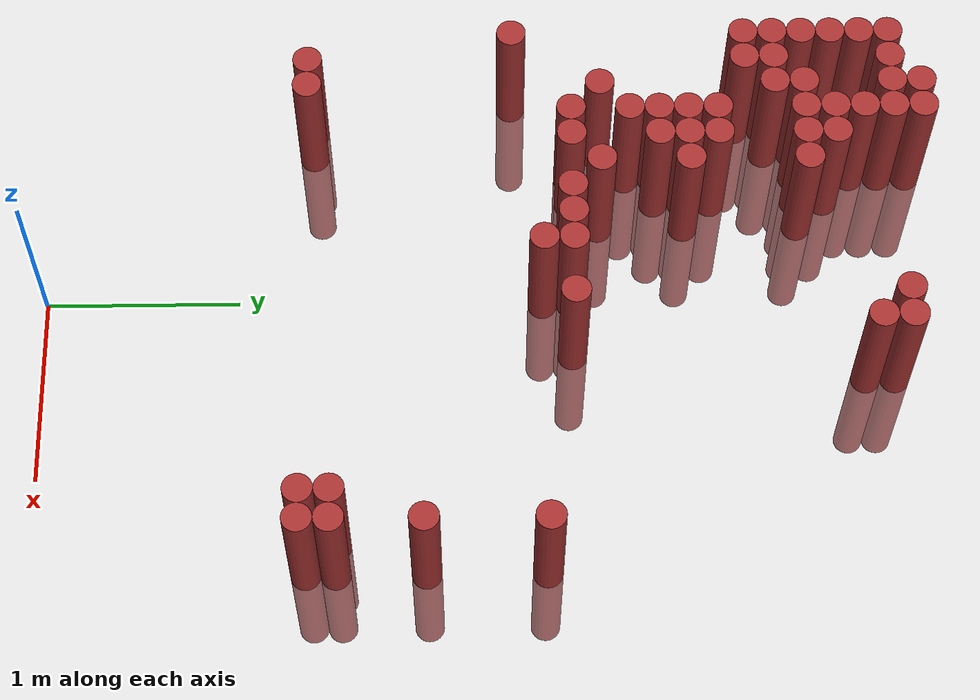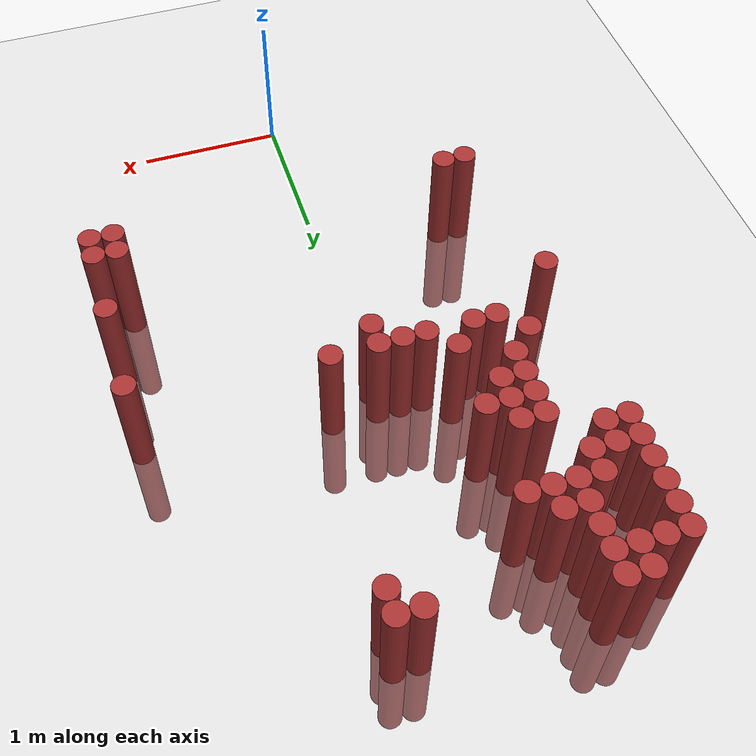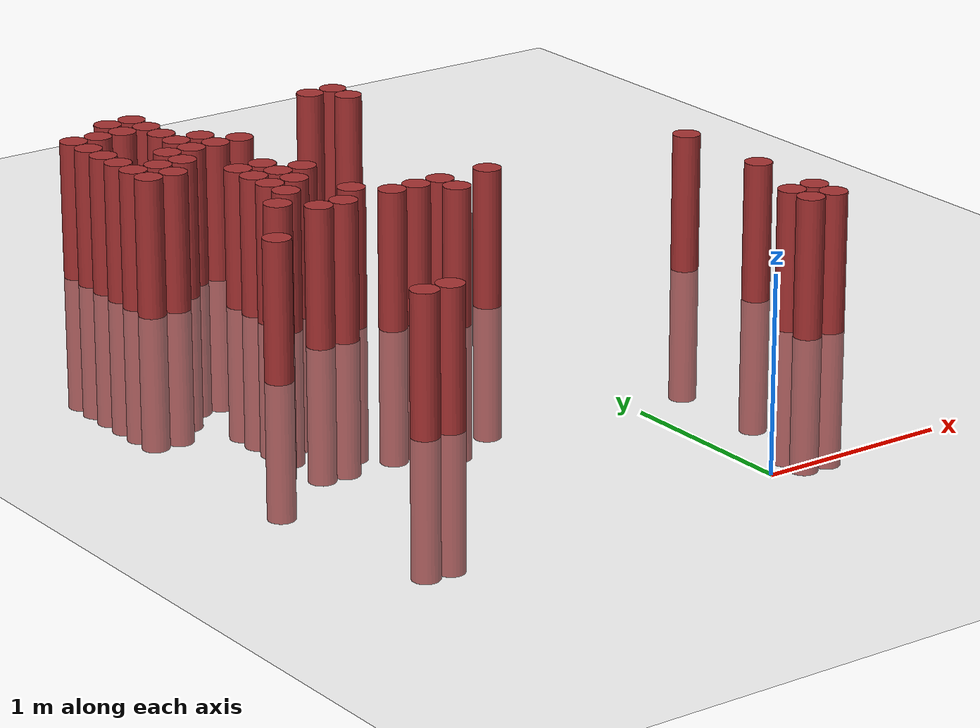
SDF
<sdf version="1.6">
 <world name="default">
  <model name="ground_plane">
   <static>1</static>
   <link name="link">
    <collision name="collision">
     <geometry><plane><normal>0 0 1</normal><size>100 100</size></plane></geometry>
     <surface><friction><ode><mu>100</mu><mu2>50</mu2></ode></friction></surface>
    </collision>
    <visual name="visual">
     <cast_shadows>0</cast_shadows>
     <geometry><plane><normal>0 0 1</normal><size>100 100</size></plane></geometry>
     <material>
      <script><uri>file://media/materials/scripts/gazebo.material</uri><name>Gazebo/Grey</name></script>
     </material>
    </visual>
   </link>
  </model>
  <model name="unit_cylinder_160">
   <static>1</static>
   <pose>-1.175000 2.425000 0.000000 0.000000 0.000000 0.000000</pose>
   <link name="link">
    <inertial>
     <mass>1</mass>
     <inertia><ixx>0.145833</ixx><ixy>0</ixy><ixz>0</ixz><iyy>0.145833</iyy><iyz>0</iyz><izz>0.125</izz></inertia>
    </inertial>
    <collision name="collision">
     <geometry><cylinder><radius>0.075000</radius><length>1.5</length></cylinder></geometry>
    </collision>
    <visual name="visual">
     <geometry><cylinder><radius>0.075000</radius><length>1.5</length></cylinder></geometry>
     <material>
      <ambient>0.648000 0.192000 0.192000 1</ambient>
      <diffuse>0.648000 0.192000 0.192000 1</diffuse>
     </material>
     <material>
      <script><name>Gazebo/Grey</name><uri>file://media/materials/scripts/gazebo.material</uri></script>
     </material>
    </visual>
   </link>
  </model>
  <model name="unit_cylinder_161">
   <static>1</static>
   <pose>-1.175000 3.625000 0.000000 0.000000 0.000000 0.000000</pose>
   <link name="link">
    <inertial>
     <mass>1</mass>
     <inertia><ixx>0.145833</ixx><ixy>0</ixy><ixz>0</ixz><iyy>0.145833</iyy><iyz>0</iyz><izz>0.125</izz></inertia>
    </inertial>
    <collision name="collision">
     <geometry><cylinder><radius>0.075000</radius><length>1.5</length></cylinder></geometry>
    </collision>
    <visual name="visual">
     <geometry><cylinder><radius>0.075000</radius><length>1.5</length></cylinder></geometry>
     <material>
      <ambient>0.648000 0.192000 0.192000 1</ambient>
      <diffuse>0.648000 0.192000 0.192000 1</diffuse>
     </material>
     <material>
      <script><name>Gazebo/Grey</name><uri>file://media/materials/scripts/gazebo.material</uri></script>
     </material>
    </visual>
   </link>
  </model>
  <model name="unit_cylinder_162">
   <static>1</static>
   <pose>-1.175000 3.775000 0.000000 0.000000 0.000000 0.000000</pose>
   <link name="link">
    <inertial>
     <mass>1</mass>
     <inertia><ixx>0.145833</ixx><ixy>0</ixy><ixz>0</ixz><iyy>0.145833</iyy><iyz>0</iyz><izz>0.125</izz></inertia>
    </inertial>
    <collision name="collision">
     <geometry><cylinder><radius>0.075000</radius><length>1.5</length></cylinder></geometry>
    </collision>
    <visual name="visual">
     <geometry><cylinder><radius>0.075000</radius><length>1.5</length></cylinder></geometry>
     <material>
      <ambient>0.648000 0.192000 0.192000 1</ambient>
      <diffuse>0.648000 0.192000 0.192000 1</diffuse>
     </material>
     <material>
      <script><name>Gazebo/Grey</name><uri>file://media/materials/scripts/gazebo.material</uri></script>
     </material>
    </visual>
   </link>
  </model>
  <model name="unit_cylinder_163">
   <static>1</static>
   <pose>-1.175000 3.925000 0.000000 0.000000 0.000000 0.000000</pose>
   <link name="link">
    <inertial>
     <mass>1</mass>
     <inertia><ixx>0.145833</ixx><ixy>0</ixy><ixz>0</ixz><iyy>0.145833</iyy><iyz>0</iyz><izz>0.125</izz></inertia>
    </inertial>
    <collision name="collision">
     <geometry><cylinder><radius>0.075000</radius><length>1.5</length></cylinder></geometry>
    </collision>
    <visual name="visual">
     <geometry><cylinder><radius>0.075000</radius><length>1.5</length></cylinder></geometry>
     <material>
      <ambient>0.648000 0.192000 0.192000 1</ambient>
      <diffuse>0.648000 0.192000 0.192000 1</diffuse>
     </material>
     <material>
      <script><name>Gazebo/Grey</name><uri>file://media/materials/scripts/gazebo.material</uri></script>
     </material>
    </visual>
   </link>
  </model>
  <model name="unit_cylinder_164">
   <static>1</static>
   <pose>-1.175000 4.075000 0.000000 0.000000 0.000000 0.000000</pose>
   <link name="link">
    <inertial>
     <mass>1</mass>
     <inertia><ixx>0.145833</ixx><ixy>0</ixy><ixz>0</ixz><iyy>0.145833</iyy><iyz>0</iyz><izz>0.125</izz></inertia>
    </inertial>
    <collision name="collision">
     <geometry><cylinder><radius>0.075000</radius><length>1.5</length></cylinder></geometry>
    </collision>
    <visual name="visual">
     <geometry><cylinder><radius>0.075000</radius><length>1.5</length></cylinder></geometry>
     <material>
      <ambient>0.648000 0.192000 0.192000 1</ambient>
      <diffuse>0.648000 0.192000 0.192000 1</diffuse>
     </material>
     <material>
      <script><name>Gazebo/Grey</name><uri>file://media/materials/scripts/gazebo.material</uri></script>
     </material>
    </visual>
   </link>
  </model>
  <model name="unit_cylinder_165">
   <static>1</static>
   <pose>-1.175000 4.225000 0.000000 0.000000 0.000000 0.000000</pose>
   <link name="link">
    <inertial>
     <mass>1</mass>
     <inertia><ixx>0.145833</ixx><ixy>0</ixy><ixz>0</ixz><iyy>0.145833</iyy><iyz>0</iyz><izz>0.125</izz></inertia>
    </inertial>
    <collision name="collision">
     <geometry><cylinder><radius>0.075000</radius><length>1.5</length></cylinder></geometry>
    </collision>
    <visual name="visual">
     <geometry><cylinder><radius>0.075000</radius><length>1.5</length></cylinder></geometry>
     <material>
      <ambient>0.648000 0.192000 0.192000 1</ambient>
      <diffuse>0.648000 0.192000 0.192000 1</diffuse>
     </material>
     <material>
      <script><name>Gazebo/Grey</name><uri>file://media/materials/scripts/gazebo.material</uri></script>
     </material>
    </visual>
   </link>
  </model>
  <model name="unit_cylinder_166">
   <static>1</static>
   <pose>-1.175000 4.375000 0.000000 0.000000 0.000000 0.000000</pose>
   <link name="link">
    <inertial>
     <mass>1</mass>
     <inertia><ixx>0.145833</ixx><ixy>0</ixy><ixz>0</ixz><iyy>0.145833</iyy><iyz>0</iyz><izz>0.125</izz></inertia>
    </inertial>
    <collision name="collision">
     <geometry><cylinder><radius>0.075000</radius><length>1.5</length></cylinder></geometry>
    </collision>
    <visual name="visual">
     <geometry><cylinder><radius>0.075000</radius><length>1.5</length></cylinder></geometry>
     <material>
      <ambient>0.648000 0.192000 0.192000 1</ambient>
      <diffuse>0.648000 0.192000 0.192000 1</diffuse>
     </material>
     <material>
      <script><name>Gazebo/Grey</name><uri>file://media/materials/scripts/gazebo.material</uri></script>
     </material>
    </visual>
   </link>
  </model>
  <model name="unit_cylinder_168">
   <static>1</static>
   <pose>-1.025000 1.375000 0.000000 0.000000 0.000000 0.000000</pose>
   <link name="link">
    <inertial>
     <mass>1</mass>
     <inertia><ixx>0.145833</ixx><ixy>0</ixy><ixz>0</ixz><iyy>0.145833</iyy><iyz>0</iyz><izz>0.125</izz></inertia>
    </inertial>
    <collision name="collision">
     <geometry><cylinder><radius>0.075000</radius><length>1.5</length></cylinder></geometry>
    </collision>
    <visual name="visual">
     <geometry><cylinder><radius>0.075000</radius><length>1.5</length></cylinder></geometry>
     <material>
      <ambient>0.648000 0.192000 0.192000 1</ambient>
      <diffuse>0.648000 0.192000 0.192000 1</diffuse>
     </material>
     <material>
      <script><name>Gazebo/Grey</name><uri>file://media/materials/scripts/gazebo.material</uri></script>
     </material>
    </visual>
   </link>
  </model>
  <model name="unit_cylinder_169">
   <static>1</static>
   <pose>-1.025000 3.625000 0.000000 0.000000 0.000000 0.000000</pose>
   <link name="link">
    <inertial>
     <mass>1</mass>
     <inertia><ixx>0.145833</ixx><ixy>0</ixy><ixz>0</ixz><iyy>0.145833</iyy><iyz>0</iyz><izz>0.125</izz></inertia>
    </inertial>
    <collision name="collision">
     <geometry><cylinder><radius>0.075000</radius><length>1.5</length></cylinder></geometry>
    </collision>
    <visual name="visual">
     <geometry><cylinder><radius>0.075000</radius><length>1.5</length></cylinder></geometry>
     <material>
      <ambient>0.648000 0.192000 0.192000 1</ambient>
      <diffuse>0.648000 0.192000 0.192000 1</diffuse>
     </material>
     <material>
      <script><name>Gazebo/Grey</name><uri>file://media/materials/scripts/gazebo.material</uri></script>
     </material>
    </visual>
   </link>
  </model>
  <model name="unit_cylinder_170">
   <static>1</static>
   <pose>-1.025000 3.775000 0.000000 0.000000 0.000000 0.000000</pose>
   <link name="link">
    <inertial>
     <mass>1</mass>
     <inertia><ixx>0.145833</ixx><ixy>0</ixy><ixz>0</ixz><iyy>0.145833</iyy><iyz>0</iyz><izz>0.125</izz></inertia>
    </inertial>
    <collision name="collision">
     <geometry><cylinder><radius>0.075000</radius><length>1.5</length></cylinder></geometry>
    </collision>
    <visual name="visual">
     <geometry><cylinder><radius>0.075000</radius><length>1.5</length></cylinder></geometry>
     <material>
      <ambient>0.648000 0.192000 0.192000 1</ambient>
      <diffuse>0.648000 0.192000 0.192000 1</diffuse>
     </material>
     <material>
      <script><name>Gazebo/Grey</name><uri>file://media/materials/scripts/gazebo.material</uri></script>
     </material>
    </visual>
   </link>
  </model>
  <model name="unit_cylinder_171">
   <static>1</static>
   <pose>-1.025000 4.375000 0.000000 0.000000 0.000000 0.000000</pose>
   <link name="link">
    <inertial>
     <mass>1</mass>
     <inertia><ixx>0.145833</ixx><ixy>0</ixy><ixz>0</ixz><iyy>0.145833</iyy><iyz>0</iyz><izz>0.125</izz></inertia>
    </inertial>
    <collision name="collision">
     <geometry><cylinder><radius>0.075000</radius><length>1.5</length></cylinder></geometry>
    </collision>
    <visual name="visual">
     <geometry><cylinder><radius>0.075000</radius><length>1.5</length></cylinder></geometry>
     <material>
      <ambient>0.648000 0.192000 0.192000 1</ambient>
      <diffuse>0.648000 0.192000 0.192000 1</diffuse>
     </material>
     <material>
      <script><name>Gazebo/Grey</name><uri>file://media/materials/scripts/gazebo.material</uri></script>
     </material>
    </visual>
   </link>
  </model>
  <model name="unit_cylinder_175">
   <static>1</static>
   <pose>-0.875000 1.375000 0.000000 0.000000 0.000000 0.000000</pose>
   <link name="link">
    <inertial>
     <mass>1</mass>
     <inertia><ixx>0.145833</ixx><ixy>0</ixy><ixz>0</ixz><iyy>0.145833</iyy><iyz>0</iyz><izz>0.125</izz></inertia>
    </inertial>
    <collision name="collision">
     <geometry><cylinder><radius>0.075000</radius><length>1.5</length></cylinder></geometry>
    </collision>
    <visual name="visual">
     <geometry><cylinder><radius>0.075000</radius><length>1.5</length></cylinder></geometry>
     <material>
      <ambient>0.648000 0.192000 0.192000 1</ambient>
      <diffuse>0.648000 0.192000 0.192000 1</diffuse>
     </material>
     <material>
      <script><name>Gazebo/Grey</name><uri>file://media/materials/scripts/gazebo.material</uri></script>
     </material>
    </visual>
   </link>
  </model>
  <model name="unit_cylinder_176">
   <static>1</static>
   <pose>-0.875000 2.875000 0.000000 0.000000 0.000000 0.000000</pose>
   <link name="link">
    <inertial>
     <mass>1</mass>
     <inertia><ixx>0.145833</ixx><ixy>0</ixy><ixz>0</ixz><iyy>0.145833</iyy><iyz>0</iyz><izz>0.125</izz></inertia>
    </inertial>
    <collision name="collision">
     <geometry><cylinder><radius>0.075000</radius><length>1.5</length></cylinder></geometry>
    </collision>
    <visual name="visual">
     <geometry><cylinder><radius>0.075000</radius><length>1.5</length></cylinder></geometry>
     <material>
      <ambient>0.648000 0.192000 0.192000 1</ambient>
      <diffuse>0.648000 0.192000 0.192000 1</diffuse>
     </material>
     <material>
      <script><name>Gazebo/Grey</name><uri>file://media/materials/scripts/gazebo.material</uri></script>
     </material>
    </visual>
   </link>
  </model>
  <model name="unit_cylinder_177">
   <static>1</static>
   <pose>-0.875000 3.775000 0.000000 0.000000 0.000000 0.000000</pose>
   <link name="link">
    <inertial>
     <mass>1</mass>
     <inertia><ixx>0.145833</ixx><ixy>0</ixy><ixz>0</ixz><iyy>0.145833</iyy><iyz>0</iyz><izz>0.125</izz></inertia>
    </inertial>
    <collision name="collision">
     <geometry><cylinder><radius>0.075000</radius><length>1.5</length></cylinder></geometry>
    </collision>
    <visual name="visual">
     <geometry><cylinder><radius>0.075000</radius><length>1.5</length></cylinder></geometry>
     <material>
      <ambient>0.648000 0.192000 0.192000 1</ambient>
      <diffuse>0.648000 0.192000 0.192000 1</diffuse>
     </material>
     <material>
      <script><name>Gazebo/Grey</name><uri>file://media/materials/scripts/gazebo.material</uri></script>
     </material>
    </visual>
   </link>
  </model>
  <model name="unit_cylinder_178">
   <static>1</static>
   <pose>-0.875000 3.925000 0.000000 0.000000 0.000000 0.000000</pose>
   <link name="link">
    <inertial>
     <mass>1</mass>
     <inertia><ixx>0.145833</ixx><ixy>0</ixy><ixz>0</ixz><iyy>0.145833</iyy><iyz>0</iyz><izz>0.125</izz></inertia>
    </inertial>
    <collision name="collision">
     <geometry><cylinder><radius>0.075000</radius><length>1.5</length></cylinder></geometry>
    </collision>
    <visual name="visual">
     <geometry><cylinder><radius>0.075000</radius><length>1.5</length></cylinder></geometry>
     <material>
      <ambient>0.648000 0.192000 0.192000 1</ambient>
      <diffuse>0.648000 0.192000 0.192000 1</diffuse>
     </material>
     <material>
      <script><name>Gazebo/Grey</name><uri>file://media/materials/scripts/gazebo.material</uri></script>
     </material>
    </visual>
   </link>
  </model>
  <model name="unit_cylinder_179">
   <static>1</static>
   <pose>-0.875000 4.375000 0.000000 0.000000 0.000000 0.000000</pose>
   <link name="link">
    <inertial>
     <mass>1</mass>
     <inertia><ixx>0.145833</ixx><ixy>0</ixy><ixz>0</ixz><iyy>0.145833</iyy><iyz>0</iyz><izz>0.125</izz></inertia>
    </inertial>
    <collision name="collision">
     <geometry><cylinder><radius>0.075000</radius><length>1.5</length></cylinder></geometry>
    </collision>
    <visual name="visual">
     <geometry><cylinder><radius>0.075000</radius><length>1.5</length></cylinder></geometry>
     <material>
      <ambient>0.648000 0.192000 0.192000 1</ambient>
      <diffuse>0.648000 0.192000 0.192000 1</diffuse>
     </material>
     <material>
      <script><name>Gazebo/Grey</name><uri>file://media/materials/scripts/gazebo.material</uri></script>
     </material>
    </visual>
   </link>
  </model>
  <model name="unit_cylinder_180">
   <static>1</static>
   <pose>-0.875000 4.525000 0.000000 0.000000 0.000000 0.000000</pose>
   <link name="link">
    <inertial>
     <mass>1</mass>
     <inertia><ixx>0.145833</ixx><ixy>0</ixy><ixz>0</ixz><iyy>0.145833</iyy><iyz>0</iyz><izz>0.125</izz></inertia>
    </inertial>
    <collision name="collision">
     <geometry><cylinder><radius>0.075000</radius><length>1.5</length></cylinder></geometry>
    </collision>
    <visual name="visual">
     <geometry><cylinder><radius>0.075000</radius><length>1.5</length></cylinder></geometry>
     <material>
      <ambient>0.648000 0.192000 0.192000 1</ambient>
      <diffuse>0.648000 0.192000 0.192000 1</diffuse>
     </material>
     <material>
      <script><name>Gazebo/Grey</name><uri>file://media/materials/scripts/gazebo.material</uri></script>
     </material>
    </visual>
   </link>
  </model>
  <model name="unit_cylinder_181">
   <static>1</static>
   <pose>-0.725000 2.725000 0.000000 0.000000 0.000000 0.000000</pose>
   <link name="link">
    <inertial>
     <mass>1</mass>
     <inertia><ixx>0.145833</ixx><ixy>0</ixy><ixz>0</ixz><iyy>0.145833</iyy><iyz>0</iyz><izz>0.125</izz></inertia>
    </inertial>
    <collision name="collision">
     <geometry><cylinder><radius>0.075000</radius><length>1.5</length></cylinder></geometry>
    </collision>
    <visual name="visual">
     <geometry><cylinder><radius>0.075000</radius><length>1.5</length></cylinder></geometry>
     <material>
      <ambient>0.648000 0.192000 0.192000 1</ambient>
      <diffuse>0.648000 0.192000 0.192000 1</diffuse>
     </material>
     <material>
      <script><name>Gazebo/Grey</name><uri>file://media/materials/scripts/gazebo.material</uri></script>
     </material>
    </visual>
   </link>
  </model>
  <model name="unit_cylinder_182">
   <static>1</static>
   <pose>-0.725000 3.025000 0.000000 0.000000 0.000000 0.000000</pose>
   <link name="link">
    <inertial>
     <mass>1</mass>
     <inertia><ixx>0.145833</ixx><ixy>0</ixy><ixz>0</ixz><iyy>0.145833</iyy><iyz>0</iyz><izz>0.125</izz></inertia>
    </inertial>
    <collision name="collision">
     <geometry><cylinder><radius>0.075000</radius><length>1.5</length></cylinder></geometry>
    </collision>
    <visual name="visual">
     <geometry><cylinder><radius>0.075000</radius><length>1.5</length></cylinder></geometry>
     <material>
      <ambient>0.648000 0.192000 0.192000 1</ambient>
      <diffuse>0.648000 0.192000 0.192000 1</diffuse>
     </material>
     <material>
      <script><name>Gazebo/Grey</name><uri>file://media/materials/scripts/gazebo.material</uri></script>
     </material>
    </visual>
   </link>
  </model>
  <model name="unit_cylinder_183">
   <static>1</static>
   <pose>-0.725000 3.175000 0.000000 0.000000 0.000000 0.000000</pose>
   <link name="link">
    <inertial>
     <mass>1</mass>
     <inertia><ixx>0.145833</ixx><ixy>0</ixy><ixz>0</ixz><iyy>0.145833</iyy><iyz>0</iyz><izz>0.125</izz></inertia>
    </inertial>
    <collision name="collision">
     <geometry><cylinder><radius>0.075000</radius><length>1.5</length></cylinder></geometry>
    </collision>
    <visual name="visual">
     <geometry><cylinder><radius>0.075000</radius><length>1.5</length></cylinder></geometry>
     <material>
      <ambient>0.648000 0.192000 0.192000 1</ambient>
      <diffuse>0.648000 0.192000 0.192000 1</diffuse>
     </material>
     <material>
      <script><name>Gazebo/Grey</name><uri>file://media/materials/scripts/gazebo.material</uri></script>
     </material>
    </visual>
   </link>
  </model>
  <model name="unit_cylinder_184">
   <static>1</static>
   <pose>-0.725000 3.325000 0.000000 0.000000 0.000000 0.000000</pose>
   <link name="link">
    <inertial>
     <mass>1</mass>
     <inertia><ixx>0.145833</ixx><ixy>0</ixy><ixz>0</ixz><iyy>0.145833</iyy><iyz>0</iyz><izz>0.125</izz></inertia>
    </inertial>
    <collision name="collision">
     <geometry><cylinder><radius>0.075000</radius><length>1.5</length></cylinder></geometry>
    </collision>
    <visual name="visual">
     <geometry><cylinder><radius>0.075000</radius><length>1.5</length></cylinder></geometry>
     <material>
      <ambient>0.648000 0.192000 0.192000 1</ambient>
      <diffuse>0.648000 0.192000 0.192000 1</diffuse>
     </material>
     <material>
      <script><name>Gazebo/Grey</name><uri>file://media/materials/scripts/gazebo.material</uri></script>
     </material>
    </visual>
   </link>
  </model>
  <model name="unit_cylinder_185">
   <static>1</static>
   <pose>-0.725000 3.475000 0.000000 0.000000 0.000000 0.000000</pose>
   <link name="link">
    <inertial>
     <mass>1</mass>
     <inertia><ixx>0.145833</ixx><ixy>0</ixy><ixz>0</ixz><iyy>0.145833</iyy><iyz>0</iyz><izz>0.125</izz></inertia>
    </inertial>
    <collision name="collision">
     <geometry><cylinder><radius>0.075000</radius><length>1.5</length></cylinder></geometry>
    </collision>
    <visual name="visual">
     <geometry><cylinder><radius>0.075000</radius><length>1.5</length></cylinder></geometry>
     <material>
      <ambient>0.648000 0.192000 0.192000 1</ambient>
      <diffuse>0.648000 0.192000 0.192000 1</diffuse>
     </material>
     <material>
      <script><name>Gazebo/Grey</name><uri>file://media/materials/scripts/gazebo.material</uri></script>
     </material>
    </visual>
   </link>
  </model>
  <model name="unit_cylinder_186">
   <static>1</static>
   <pose>-0.725000 3.925000 0.000000 0.000000 0.000000 0.000000</pose>
   <link name="link">
    <inertial>
     <mass>1</mass>
     <inertia><ixx>0.145833</ixx><ixy>0</ixy><ixz>0</ixz><iyy>0.145833</iyy><iyz>0</iyz><izz>0.125</izz></inertia>
    </inertial>
    <collision name="collision">
     <geometry><cylinder><radius>0.075000</radius><length>1.5</length></cylinder></geometry>
    </collision>
    <visual name="visual">
     <geometry><cylinder><radius>0.075000</radius><length>1.5</length></cylinder></geometry>
     <material>
      <ambient>0.648000 0.192000 0.192000 1</ambient>
      <diffuse>0.648000 0.192000 0.192000 1</diffuse>
     </material>
     <material>
      <script><name>Gazebo/Grey</name><uri>file://media/materials/scripts/gazebo.material</uri></script>
     </material>
    </visual>
   </link>
  </model>
  <model name="unit_cylinder_187">
   <static>1</static>
   <pose>-0.725000 4.075000 0.000000 0.000000 0.000000 0.000000</pose>
   <link name="link">
    <inertial>
     <mass>1</mass>
     <inertia><ixx>0.145833</ixx><ixy>0</ixy><ixz>0</ixz><iyy>0.145833</iyy><iyz>0</iyz><izz>0.125</izz></inertia>
    </inertial>
    <collision name="collision">
     <geometry><cylinder><radius>0.075000</radius><length>1.5</length></cylinder></geometry>
    </collision>
    <visual name="visual">
     <geometry><cylinder><radius>0.075000</radius><length>1.5</length></cylinder></geometry>
     <material>
      <ambient>0.648000 0.192000 0.192000 1</ambient>
      <diffuse>0.648000 0.192000 0.192000 1</diffuse>
     </material>
     <material>
      <script><name>Gazebo/Grey</name><uri>file://media/materials/scripts/gazebo.material</uri></script>
     </material>
    </visual>
   </link>
  </model>
  <model name="unit_cylinder_188">
   <static>1</static>
   <pose>-0.725000 4.225000 0.000000 0.000000 0.000000 0.000000</pose>
   <link name="link">
    <inertial>
     <mass>1</mass>
     <inertia><ixx>0.145833</ixx><ixy>0</ixy><ixz>0</ixz><iyy>0.145833</iyy><iyz>0</iyz><izz>0.125</izz></inertia>
    </inertial>
    <collision name="collision">
     <geometry><cylinder><radius>0.075000</radius><length>1.5</length></cylinder></geometry>
    </collision>
    <visual name="visual">
     <geometry><cylinder><radius>0.075000</radius><length>1.5</length></cylinder></geometry>
     <material>
      <ambient>0.648000 0.192000 0.192000 1</ambient>
      <diffuse>0.648000 0.192000 0.192000 1</diffuse>
     </material>
     <material>
      <script><name>Gazebo/Grey</name><uri>file://media/materials/scripts/gazebo.material</uri></script>
     </material>
    </visual>
   </link>
  </model>
  <model name="unit_cylinder_189">
   <static>1</static>
   <pose>-0.725000 4.375000 0.000000 0.000000 0.000000 0.000000</pose>
   <link name="link">
    <inertial>
     <mass>1</mass>
     <inertia><ixx>0.145833</ixx><ixy>0</ixy><ixz>0</ixz><iyy>0.145833</iyy><iyz>0</iyz><izz>0.125</izz></inertia>
    </inertial>
    <collision name="collision">
     <geometry><cylinder><radius>0.075000</radius><length>1.5</length></cylinder></geometry>
    </collision>
    <visual name="visual">
     <geometry><cylinder><radius>0.075000</radius><length>1.5</length></cylinder></geometry>
     <material>
      <ambient>0.648000 0.192000 0.192000 1</ambient>
      <diffuse>0.648000 0.192000 0.192000 1</diffuse>
     </material>
     <material>
      <script><name>Gazebo/Grey</name><uri>file://media/materials/scripts/gazebo.material</uri></script>
     </material>
    </visual>
   </link>
  </model>
  <model name="unit_cylinder_190">
   <static>1</static>
   <pose>-0.725000 4.525000 0.000000 0.000000 0.000000 0.000000</pose>
   <link name="link">
    <inertial>
     <mass>1</mass>
     <inertia><ixx>0.145833</ixx><ixy>0</ixy><ixz>0</ixz><iyy>0.145833</iyy><iyz>0</iyz><izz>0.125</izz></inertia>
    </inertial>
    <collision name="collision">
     <geometry><cylinder><radius>0.075000</radius><length>1.5</length></cylinder></geometry>
    </collision>
    <visual name="visual">
     <geometry><cylinder><radius>0.075000</radius><length>1.5</length></cylinder></geometry>
     <material>
      <ambient>0.648000 0.192000 0.192000 1</ambient>
      <diffuse>0.648000 0.192000 0.192000 1</diffuse>
     </material>
     <material>
      <script><name>Gazebo/Grey</name><uri>file://media/materials/scripts/gazebo.material</uri></script>
     </material>
    </visual>
   </link>
  </model>
  <model name="unit_cylinder_191">
   <static>1</static>
   <pose>-0.575000 2.725000 0.000000 0.000000 0.000000 0.000000</pose>
   <link name="link">
    <inertial>
     <mass>1</mass>
     <inertia><ixx>0.145833</ixx><ixy>0</ixy><ixz>0</ixz><iyy>0.145833</iyy><iyz>0</iyz><izz>0.125</izz></inertia>
    </inertial>
    <collision name="collision">
     <geometry><cylinder><radius>0.075000</radius><length>1.5</length></cylinder></geometry>
    </collision>
    <visual name="visual">
     <geometry><cylinder><radius>0.075000</radius><length>1.5</length></cylinder></geometry>
     <material>
      <ambient>0.648000 0.192000 0.192000 1</ambient>
      <diffuse>0.648000 0.192000 0.192000 1</diffuse>
     </material>
     <material>
      <script><name>Gazebo/Grey</name><uri>file://media/materials/scripts/gazebo.material</uri></script>
     </material>
    </visual>
   </link>
  </model>
  <model name="unit_cylinder_192">
   <static>1</static>
   <pose>-0.575000 3.175000 0.000000 0.000000 0.000000 0.000000</pose>
   <link name="link">
    <inertial>
     <mass>1</mass>
     <inertia><ixx>0.145833</ixx><ixy>0</ixy><ixz>0</ixz><iyy>0.145833</iyy><iyz>0</iyz><izz>0.125</izz></inertia>
    </inertial>
    <collision name="collision">
     <geometry><cylinder><radius>0.075000</radius><length>1.5</length></cylinder></geometry>
    </collision>
    <visual name="visual">
     <geometry><cylinder><radius>0.075000</radius><length>1.5</length></cylinder></geometry>
     <material>
      <ambient>0.648000 0.192000 0.192000 1</ambient>
      <diffuse>0.648000 0.192000 0.192000 1</diffuse>
     </material>
     <material>
      <script><name>Gazebo/Grey</name><uri>file://media/materials/scripts/gazebo.material</uri></script>
     </material>
    </visual>
   </link>
  </model>
  <model name="unit_cylinder_193">
   <static>1</static>
   <pose>-0.575000 3.325000 0.000000 0.000000 0.000000 0.000000</pose>
   <link name="link">
    <inertial>
     <mass>1</mass>
     <inertia><ixx>0.145833</ixx><ixy>0</ixy><ixz>0</ixz><iyy>0.145833</iyy><iyz>0</iyz><izz>0.125</izz></inertia>
    </inertial>
    <collision name="collision">
     <geometry><cylinder><radius>0.075000</radius><length>1.5</length></cylinder></geometry>
    </collision>
    <visual name="visual">
     <geometry><cylinder><radius>0.075000</radius><length>1.5</length></cylinder></geometry>
     <material>
      <ambient>0.648000 0.192000 0.192000 1</ambient>
      <diffuse>0.648000 0.192000 0.192000 1</diffuse>
     </material>
     <material>
      <script><name>Gazebo/Grey</name><uri>file://media/materials/scripts/gazebo.material</uri></script>
     </material>
    </visual>
   </link>
  </model>
  <model name="unit_cylinder_194">
   <static>1</static>
   <pose>-0.575000 3.475000 0.000000 0.000000 0.000000 0.000000</pose>
   <link name="link">
    <inertial>
     <mass>1</mass>
     <inertia><ixx>0.145833</ixx><ixy>0</ixy><ixz>0</ixz><iyy>0.145833</iyy><iyz>0</iyz><izz>0.125</izz></inertia>
    </inertial>
    <collision name="collision">
     <geometry><cylinder><radius>0.075000</radius><length>1.5</length></cylinder></geometry>
    </collision>
    <visual name="visual">
     <geometry><cylinder><radius>0.075000</radius><length>1.5</length></cylinder></geometry>
     <material>
      <ambient>0.648000 0.192000 0.192000 1</ambient>
      <diffuse>0.648000 0.192000 0.192000 1</diffuse>
     </material>
     <material>
      <script><name>Gazebo/Grey</name><uri>file://media/materials/scripts/gazebo.material</uri></script>
     </material>
    </visual>
   </link>
  </model>
  <model name="unit_cylinder_195">
   <static>1</static>
   <pose>-0.575000 3.925000 0.000000 0.000000 0.000000 0.000000</pose>
   <link name="link">
    <inertial>
     <mass>1</mass>
     <inertia><ixx>0.145833</ixx><ixy>0</ixy><ixz>0</ixz><iyy>0.145833</iyy><iyz>0</iyz><izz>0.125</izz></inertia>
    </inertial>
    <collision name="collision">
     <geometry><cylinder><radius>0.075000</radius><length>1.5</length></cylinder></geometry>
    </collision>
    <visual name="visual">
     <geometry><cylinder><radius>0.075000</radius><length>1.5</length></cylinder></geometry>
     <material>
      <ambient>0.648000 0.192000 0.192000 1</ambient>
      <diffuse>0.648000 0.192000 0.192000 1</diffuse>
     </material>
     <material>
      <script><name>Gazebo/Grey</name><uri>file://media/materials/scripts/gazebo.material</uri></script>
     </material>
    </visual>
   </link>
  </model>
  <model name="unit_cylinder_196">
   <static>1</static>
   <pose>-0.575000 4.075000 0.000000 0.000000 0.000000 0.000000</pose>
   <link name="link">
    <inertial>
     <mass>1</mass>
     <inertia><ixx>0.145833</ixx><ixy>0</ixy><ixz>0</ixz><iyy>0.145833</iyy><iyz>0</iyz><izz>0.125</izz></inertia>
    </inertial>
    <collision name="collision">
     <geometry><cylinder><radius>0.075000</radius><length>1.5</length></cylinder></geometry>
    </collision>
    <visual name="visual">
     <geometry><cylinder><radius>0.075000</radius><length>1.5</length></cylinder></geometry>
     <material>
      <ambient>0.648000 0.192000 0.192000 1</ambient>
      <diffuse>0.648000 0.192000 0.192000 1</diffuse>
     </material>
     <material>
      <script><name>Gazebo/Grey</name><uri>file://media/materials/scripts/gazebo.material</uri></script>
     </material>
    </visual>
   </link>
  </model>
  <model name="unit_cylinder_197">
   <static>1</static>
   <pose>-0.425000 2.875000 0.000000 0.000000 0.000000 0.000000</pose>
   <link name="link">
    <inertial>
     <mass>1</mass>
     <inertia><ixx>0.145833</ixx><ixy>0</ixy><ixz>0</ixz><iyy>0.145833</iyy><iyz>0</iyz><izz>0.125</izz></inertia>
    </inertial>
    <collision name="collision">
     <geometry><cylinder><radius>0.075000</radius><length>1.5</length></cylinder></geometry>
    </collision>
    <visual name="visual">
     <geometry><cylinder><radius>0.075000</radius><length>1.5</length></cylinder></geometry>
     <material>
      <ambient>0.648000 0.192000 0.192000 1</ambient>
      <diffuse>0.648000 0.192000 0.192000 1</diffuse>
     </material>
     <material>
      <script><name>Gazebo/Grey</name><uri>file://media/materials/scripts/gazebo.material</uri></script>
     </material>
    </visual>
   </link>
  </model>
  <model name="unit_cylinder_198">
   <static>1</static>
   <pose>-0.425000 3.325000 0.000000 0.000000 0.000000 0.000000</pose>
   <link name="link">
    <inertial>
     <mass>1</mass>
     <inertia><ixx>0.145833</ixx><ixy>0</ixy><ixz>0</ixz><iyy>0.145833</iyy><iyz>0</iyz><izz>0.125</izz></inertia>
    </inertial>
    <collision name="collision">
     <geometry><cylinder><radius>0.075000</radius><length>1.5</length></cylinder></geometry>
    </collision>
    <visual name="visual">
     <geometry><cylinder><radius>0.075000</radius><length>1.5</length></cylinder></geometry>
     <material>
      <ambient>0.648000 0.192000 0.192000 1</ambient>
      <diffuse>0.648000 0.192000 0.192000 1</diffuse>
     </material>
     <material>
      <script><name>Gazebo/Grey</name><uri>file://media/materials/scripts/gazebo.material</uri></script>
     </material>
    </visual>
   </link>
  </model>
  <model name="unit_cylinder_199">
   <static>1</static>
   <pose>-0.425000 3.925000 0.000000 0.000000 0.000000 0.000000</pose>
   <link name="link">
    <inertial>
     <mass>1</mass>
     <inertia><ixx>0.145833</ixx><ixy>0</ixy><ixz>0</ixz><iyy>0.145833</iyy><iyz>0</iyz><izz>0.125</izz></inertia>
    </inertial>
    <collision name="collision">
     <geometry><cylinder><radius>0.075000</radius><length>1.5</length></cylinder></geometry>
    </collision>
    <visual name="visual">
     <geometry><cylinder><radius>0.075000</radius><length>1.5</length></cylinder></geometry>
     <material>
      <ambient>0.648000 0.192000 0.192000 1</ambient>
      <diffuse>0.648000 0.192000 0.192000 1</diffuse>
     </material>
     <material>
      <script><name>Gazebo/Grey</name><uri>file://media/materials/scripts/gazebo.material</uri></script>
     </material>
    </visual>
   </link>
  </model>
  <model name="unit_cylinder_200">
   <static>1</static>
   <pose>-0.275000 2.725000 0.000000 0.000000 0.000000 0.000000</pose>
   <link name="link">
    <inertial>
     <mass>1</mass>
     <inertia><ixx>0.145833</ixx><ixy>0</ixy><ixz>0</ixz><iyy>0.145833</iyy><iyz>0</iyz><izz>0.125</izz></inertia>
    </inertial>
    <collision name="collision">
     <geometry><cylinder><radius>0.075000</radius><length>1.5</length></cylinder></geometry>
    </collision>
    <visual name="visual">
     <geometry><cylinder><radius>0.075000</radius><length>1.5</length></cylinder></geometry>
     <material>
      <ambient>0.648000 0.192000 0.192000 1</ambient>
      <diffuse>0.648000 0.192000 0.192000 1</diffuse>
     </material>
     <material>
      <script><name>Gazebo/Grey</name><uri>file://media/materials/scripts/gazebo.material</uri></script>
     </material>
    </visual>
   </link>
  </model>
  <model name="unit_cylinder_201">
   <static>1</static>
   <pose>-0.125000 2.725000 0.000000 0.000000 0.000000 0.000000</pose>
   <link name="link">
    <inertial>
     <mass>1</mass>
     <inertia><ixx>0.145833</ixx><ixy>0</ixy><ixz>0</ixz><iyy>0.145833</iyy><iyz>0</iyz><izz>0.125</izz></inertia>
    </inertial>
    <collision name="collision">
     <geometry><cylinder><radius>0.075000</radius><length>1.5</length></cylinder></geometry>
    </collision>
    <visual name="visual">
     <geometry><cylinder><radius>0.075000</radius><length>1.5</length></cylinder></geometry>
     <material>
      <ambient>0.648000 0.192000 0.192000 1</ambient>
      <diffuse>0.648000 0.192000 0.192000 1</diffuse>
     </material>
     <material>
      <script><name>Gazebo/Grey</name><uri>file://media/materials/scripts/gazebo.material</uri></script>
     </material>
    </visual>
   </link>
  </model>
  <model name="unit_cylinder_202">
   <static>1</static>
   <pose>0.025000 2.575000 0.000000 0.000000 0.000000 0.000000</pose>
   <link name="link">
    <inertial>
     <mass>1</mass>
     <inertia><ixx>0.145833</ixx><ixy>0</ixy><ixz>0</ixz><iyy>0.145833</iyy><iyz>0</iyz><izz>0.125</izz></inertia>
    </inertial>
    <collision name="collision">
     <geometry><cylinder><radius>0.075000</radius><length>1.5</length></cylinder></geometry>
    </collision>
    <visual name="visual">
     <geometry><cylinder><radius>0.075000</radius><length>1.5</length></cylinder></geometry>
     <material>
      <ambient>0.648000 0.192000 0.192000 1</ambient>
      <diffuse>0.648000 0.192000 0.192000 1</diffuse>
     </material>
     <material>
      <script><name>Gazebo/Grey</name><uri>file://media/materials/scripts/gazebo.material</uri></script>
     </material>
    </visual>
   </link>
  </model>
  <model name="unit_cylinder_203">
   <static>1</static>
   <pose>0.025000 2.725000 0.000000 0.000000 0.000000 0.000000</pose>
   <link name="link">
    <inertial>
     <mass>1</mass>
     <inertia><ixx>0.145833</ixx><ixy>0</ixy><ixz>0</ixz><iyy>0.145833</iyy><iyz>0</iyz><izz>0.125</izz></inertia>
    </inertial>
    <collision name="collision">
     <geometry><cylinder><radius>0.075000</radius><length>1.5</length></cylinder></geometry>
    </collision>
    <visual name="visual">
     <geometry><cylinder><radius>0.075000</radius><length>1.5</length></cylinder></geometry>
     <material>
      <ambient>0.648000 0.192000 0.192000 1</ambient>
      <diffuse>0.648000 0.192000 0.192000 1</diffuse>
     </material>
     <material>
      <script><name>Gazebo/Grey</name><uri>file://media/materials/scripts/gazebo.material</uri></script>
     </material>
    </visual>
   </link>
  </model>
  <model name="unit_cylinder_204">
   <static>1</static>
   <pose>0.325000 2.725000 0.000000 0.000000 0.000000 0.000000</pose>
   <link name="link">
    <inertial>
     <mass>1</mass>
     <inertia><ixx>0.145833</ixx><ixy>0</ixy><ixz>0</ixz><iyy>0.145833</iyy><iyz>0</iyz><izz>0.125</izz></inertia>
    </inertial>
    <collision name="collision">
     <geometry><cylinder><radius>0.075000</radius><length>1.5</length></cylinder></geometry>
    </collision>
    <visual name="visual">
     <geometry><cylinder><radius>0.075000</radius><length>1.5</length></cylinder></geometry>
     <material>
      <ambient>0.648000 0.192000 0.192000 1</ambient>
      <diffuse>0.648000 0.192000 0.192000 1</diffuse>
     </material>
     <material>
      <script><name>Gazebo/Grey</name><uri>file://media/materials/scripts/gazebo.material</uri></script>
     </material>
    </visual>
   </link>
  </model>
  <model name="unit_cylinder_205">
   <static>1</static>
   <pose>0.325000 4.375000 0.000000 0.000000 0.000000 0.000000</pose>
   <link name="link">
    <inertial>
     <mass>1</mass>
     <inertia><ixx>0.145833</ixx><ixy>0</ixy><ixz>0</ixz><iyy>0.145833</iyy><iyz>0</iyz><izz>0.125</izz></inertia>
    </inertial>
    <collision name="collision">
     <geometry><cylinder><radius>0.075000</radius><length>1.5</length></cylinder></geometry>
    </collision>
    <visual name="visual">
     <geometry><cylinder><radius>0.075000</radius><length>1.5</length></cylinder></geometry>
     <material>
      <ambient>0.648000 0.192000 0.192000 1</ambient>
      <diffuse>0.648000 0.192000 0.192000 1</diffuse>
     </material>
     <material>
      <script><name>Gazebo/Grey</name><uri>file://media/materials/scripts/gazebo.material</uri></script>
     </material>
    </visual>
   </link>
  </model>
  <model name="unit_cylinder_206">
   <static>1</static>
   <pose>0.475000 4.225000 0.000000 0.000000 0.000000 0.000000</pose>
   <link name="link">
    <inertial>
     <mass>1</mass>
     <inertia><ixx>0.145833</ixx><ixy>0</ixy><ixz>0</ixz><iyy>0.145833</iyy><iyz>0</iyz><izz>0.125</izz></inertia>
    </inertial>
    <collision name="collision">
     <geometry><cylinder><radius>0.075000</radius><length>1.5</length></cylinder></geometry>
    </collision>
    <visual name="visual">
     <geometry><cylinder><radius>0.075000</radius><length>1.5</length></cylinder></geometry>
     <material>
      <ambient>0.648000 0.192000 0.192000 1</ambient>
      <diffuse>0.648000 0.192000 0.192000 1</diffuse>
     </material>
     <material>
      <script><name>Gazebo/Grey</name><uri>file://media/materials/scripts/gazebo.material</uri></script>
     </material>
    </visual>
   </link>
  </model>
  <model name="unit_cylinder_207">
   <static>1</static>
   <pose>0.475000 4.375000 0.000000 0.000000 0.000000 0.000000</pose>
   <link name="link">
    <inertial>
     <mass>1</mass>
     <inertia><ixx>0.145833</ixx><ixy>0</ixy><ixz>0</ixz><iyy>0.145833</iyy><iyz>0</iyz><izz>0.125</izz></inertia>
    </inertial>
    <collision name="collision">
     <geometry><cylinder><radius>0.075000</radius><length>1.5</length></cylinder></geometry>
    </collision>
    <visual name="visual">
     <geometry><cylinder><radius>0.075000</radius><length>1.5</length></cylinder></geometry>
     <material>
      <ambient>0.648000 0.192000 0.192000 1</ambient>
      <diffuse>0.648000 0.192000 0.192000 1</diffuse>
     </material>
     <material>
      <script><name>Gazebo/Grey</name><uri>file://media/materials/scripts/gazebo.material</uri></script>
     </material>
    </visual>
   </link>
  </model>
  <model name="unit_cylinder_211">
   <static>1</static>
   <pose>1.375000 1.375000 0.000000 0.000000 0.000000 0.000000</pose>
   <link name="link">
    <inertial>
     <mass>1</mass>
     <inertia><ixx>0.145833</ixx><ixy>0</ixy><ixz>0</ixz><iyy>0.145833</iyy><iyz>0</iyz><izz>0.125</izz></inertia>
    </inertial>
    <collision name="collision">
     <geometry><cylinder><radius>0.075000</radius><length>1.5</length></cylinder></geometry>
    </collision>
    <visual name="visual">
     <geometry><cylinder><radius>0.075000</radius><length>1.5</length></cylinder></geometry>
     <material>
      <ambient>0.648000 0.192000 0.192000 1</ambient>
      <diffuse>0.648000 0.192000 0.192000 1</diffuse>
     </material>
     <material>
      <script><name>Gazebo/Grey</name><uri>file://media/materials/scripts/gazebo.material</uri></script>
     </material>
    </visual>
   </link>
  </model>
  <model name="unit_cylinder_212">
   <static>1</static>
   <pose>1.375000 1.525000 0.000000 0.000000 0.000000 0.000000</pose>
   <link name="link">
    <inertial>
     <mass>1</mass>
     <inertia><ixx>0.145833</ixx><ixy>0</ixy><ixz>0</ixz><iyy>0.145833</iyy><iyz>0</iyz><izz>0.125</izz></inertia>
    </inertial>
    <collision name="collision">
     <geometry><cylinder><radius>0.075000</radius><length>1.5</length></cylinder></geometry>
    </collision>
    <visual name="visual">
     <geometry><cylinder><radius>0.075000</radius><length>1.5</length></cylinder></geometry>
     <material>
      <ambient>0.648000 0.192000 0.192000 1</ambient>
      <diffuse>0.648000 0.192000 0.192000 1</diffuse>
     </material>
     <material>
      <script><name>Gazebo/Grey</name><uri>file://media/materials/scripts/gazebo.material</uri></script>
     </material>
    </visual>
   </link>
  </model>
  <model name="unit_cylinder_215">
   <static>1</static>
   <pose>1.525000 1.375000 0.000000 0.000000 0.000000 0.000000</pose>
   <link name="link">
    <inertial>
     <mass>1</mass>
     <inertia><ixx>0.145833</ixx><ixy>0</ixy><ixz>0</ixz><iyy>0.145833</iyy><iyz>0</iyz><izz>0.125</izz></inertia>
    </inertial>
    <collision name="collision">
     <geometry><cylinder><radius>0.075000</radius><length>1.5</length></cylinder></geometry>
    </collision>
    <visual name="visual">
     <geometry><cylinder><radius>0.075000</radius><length>1.5</length></cylinder></geometry>
     <material>
      <ambient>0.648000 0.192000 0.192000 1</ambient>
      <diffuse>0.648000 0.192000 0.192000 1</diffuse>
     </material>
     <material>
      <script><name>Gazebo/Grey</name><uri>file://media/materials/scripts/gazebo.material</uri></script>
     </material>
    </visual>
   </link>
  </model>
  <model name="unit_cylinder_216">
   <static>1</static>
   <pose>1.525000 1.525000 0.000000 0.000000 0.000000 0.000000</pose>
   <link name="link">
    <inertial>
     <mass>1</mass>
     <inertia><ixx>0.145833</ixx><ixy>0</ixy><ixz>0</ixz><iyy>0.145833</iyy><iyz>0</iyz><izz>0.125</izz></inertia>
    </inertial>
    <collision name="collision">
     <geometry><cylinder><radius>0.075000</radius><length>1.5</length></cylinder></geometry>
    </collision>
    <visual name="visual">
     <geometry><cylinder><radius>0.075000</radius><length>1.5</length></cylinder></geometry>
     <material>
      <ambient>0.648000 0.192000 0.192000 1</ambient>
      <diffuse>0.648000 0.192000 0.192000 1</diffuse>
     </material>
     <material>
      <script><name>Gazebo/Grey</name><uri>file://media/materials/scripts/gazebo.material</uri></script>
     </material>
    </visual>
   </link>
  </model>
  <model name="unit_cylinder_217">
   <static>1</static>
   <pose>1.525000 1.975000 0.000000 0.000000 0.000000 0.000000</pose>
   <link name="link">
    <inertial>
     <mass>1</mass>
     <inertia><ixx>0.145833</ixx><ixy>0</ixy><ixz>0</ixz><iyy>0.145833</iyy><iyz>0</iyz><izz>0.125</izz></inertia>
    </inertial>
    <collision name="collision">
     <geometry><cylinder><radius>0.075000</radius><length>1.5</length></cylinder></geometry>
    </collision>
    <visual name="visual">
     <geometry><cylinder><radius>0.075000</radius><length>1.5</length></cylinder></geometry>
     <material>
      <ambient>0.648000 0.192000 0.192000 1</ambient>
      <diffuse>0.648000 0.192000 0.192000 1</diffuse>
     </material>
     <material>
      <script><name>Gazebo/Grey</name><uri>file://media/materials/scripts/gazebo.material</uri></script>
     </material>
    </visual>
   </link>
  </model>
  <model name="unit_cylinder_218">
   <static>1</static>
   <pose>1.525000 2.575000 0.000000 0.000000 0.000000 0.000000</pose>
   <link name="link">
    <inertial>
     <mass>1</mass>
     <inertia><ixx>0.145833</ixx><ixy>0</ixy><ixz>0</ixz><iyy>0.145833</iyy><iyz>0</iyz><izz>0.125</izz></inertia>
    </inertial>
    <collision name="collision">
     <geometry><cylinder><radius>0.075000</radius><length>1.5</length></cylinder></geometry>
    </collision>
    <visual name="visual">
     <geometry><cylinder><radius>0.075000</radius><length>1.5</length></cylinder></geometry>
     <material>
      <ambient>0.648000 0.192000 0.192000 1</ambient>
      <diffuse>0.648000 0.192000 0.192000 1</diffuse>
     </material>
     <material>
      <script><name>Gazebo/Grey</name><uri>file://media/materials/scripts/gazebo.material</uri></script>
     </material>
    </visual>
   </link>
  </model>
 </world>
</sdf>
